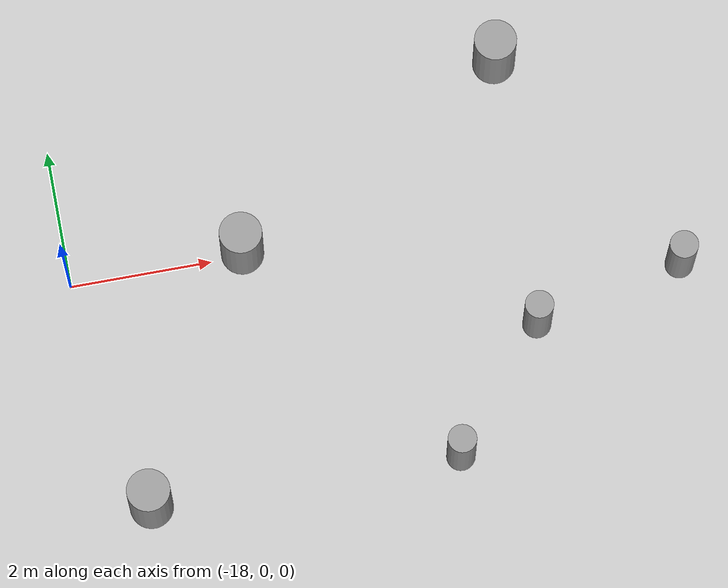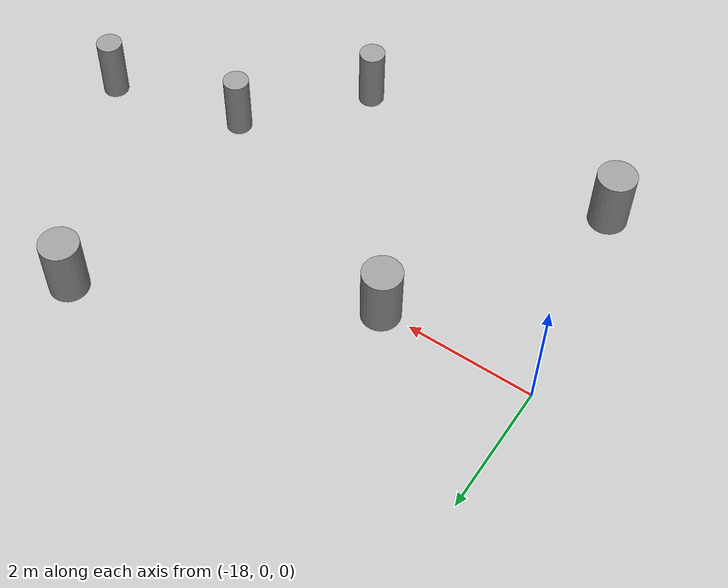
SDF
<sdf version="1.6">
 <world name="default">
  <model name="cylinder_right_clone_clone">
   <link name="link_0">
    <inertial>
     <mass>1</mass>
     <inertia><ixx>0.145833</ixx><ixy>0</ixy><ixz>0</ixz><iyy>0.145833</iyy><iyz>0</iyz><izz>0.125</izz></inertia>
    </inertial>
    <visual name="visual">
     <geometry><cylinder><radius>0.2</radius><length>1</length></cylinder></geometry>
     <material>
      <lighting>1</lighting>
      <script><uri>file://media/materials/scripts/gazebo.material</uri><name>Gazebo/Grey</name></script>
      <ambient>0.3 0.3 0.3 1</ambient>
      <diffuse>0.7 0.7 0.7 1</diffuse>
      <specular>0.01 0.01 0.01 1</specular>
      <emissive>0 0 0 1</emissive>
      <shader type="vertex"><normal_map>__default__</normal_map></shader>
     </material>
    </visual>
    <collision name="collision">
     <geometry><cylinder><radius>0.2</radius><length>1</length></cylinder></geometry>
     <surface>
      <friction>
       <ode><mu>1</mu><mu2>1</mu2><fdir1>0 0 0</fdir1><slip1>0</slip1><slip2>0</slip2></ode>
       <torsional>
        <coefficient>1</coefficient>
        <patch_radius>0</patch_radius>
        <surface_radius>0</surface_radius>
        <use_patch_radius>1</use_patch_radius>
        <ode><slip>0</slip></ode>
       </torsional>
      </friction>
      <bounce><restitution_coefficient>0</restitution_coefficient><threshold>1e+06</threshold></bounce>
      <contact>
       <collide_without_contact>0</collide_without_contact>
       <collide_without_contact_bitmask>1</collide_without_contact_bitmask>
       <collide_bitmask>1</collide_bitmask>
       <ode>
        <soft_cfm>0</soft_cfm>
        <soft_erp>0.2</soft_erp>
        <kp>1e+13</kp>
        <kd>1</kd>
        <max_vel>0.01</max_vel>
        <min_depth>0</min_depth>
       </ode>
       <bullet>
        <split_impulse>1</split_impulse>
        <split_impulse_penetration_threshold>-0.01</split_impulse_penetration_threshold>
        <soft_cfm>0</soft_cfm>
        <soft_erp>0.2</soft_erp>
        <kp>1e+13</kp>
        <kd>1</kd>
       </bullet>
      </contact>
     </surface>
    </collision>
   </link>
   <static>0</static>
   <pose>-9.57244 -1.24921 0.502866 0.010634 -0.010306 0.73698</pose>
  </model>
  <model name="cylinder_left_clone_2_clone_15_clone_7">
   <link name="link_1">
    <inertial>
     <mass>1</mass>
     <inertia><ixx>0.145833</ixx><ixy>0</ixy><ixz>0</ixz><iyy>0.145833</iyy><iyz>0</iyz><izz>0.125</izz></inertia>
    </inertial>
    <visual name="visual">
     <geometry><cylinder><radius>0.3</radius><length>1</length></cylinder></geometry>
     <material>
      <lighting>1</lighting>
      <script><uri>file://media/materials/scripts/gazebo.material</uri><name>Gazebo/Grey</name></script>
      <ambient>0.3 0.3 0.3 1</ambient>
      <diffuse>0.7 0.7 0.7 1</diffuse>
      <specular>0.01 0.01 0.01 1</specular>
      <emissive>0 0 0 1</emissive>
      <shader type="vertex"><normal_map>__default__</normal_map></shader>
     </material>
    </visual>
    <collision name="collision">
     <geometry><cylinder><radius>0.3</radius><length>1</length></cylinder></geometry>
     <surface>
      <friction>
       <ode><mu>1</mu><mu2>1</mu2><fdir1>0 0 0</fdir1><slip1>0</slip1><slip2>0</slip2></ode>
       <torsional>
        <coefficient>1</coefficient>
        <patch_radius>0</patch_radius>
        <surface_radius>0</surface_radius>
        <use_patch_radius>1</use_patch_radius>
        <ode><slip>0</slip></ode>
       </torsional>
      </friction>
      <bounce><restitution_coefficient>0</restitution_coefficient><threshold>1e+06</threshold></bounce>
      <contact>
       <collide_without_contact>0</collide_without_contact>
       <collide_without_contact_bitmask>1</collide_without_contact_bitmask>
       <collide_bitmask>1</collide_bitmask>
       <ode>
        <soft_cfm>0</soft_cfm>
        <soft_erp>0.2</soft_erp>
        <kp>1e+13</kp>
        <kd>1</kd>
        <max_vel>0.01</max_vel>
        <min_depth>0</min_depth>
       </ode>
       <bullet>
        <split_impulse>1</split_impulse>
        <split_impulse_penetration_threshold>-0.01</split_impulse_penetration_threshold>
        <soft_cfm>0</soft_cfm>
        <soft_erp>0.2</soft_erp>
        <kp>1e+13</kp>
        <kd>1</kd>
       </bullet>
      </contact>
     </surface>
    </collision>
   </link>
   <static>0</static>
   <pose>-17.415 -3.32541 0.49912 0 -0 1.95059</pose>
  </model>
  <model name="cylinder_left_clone_2_clone_15_clone_8">
   <link name="link_1">
    <inertial>
     <mass>1</mass>
     <inertia><ixx>0.145833</ixx><ixy>0</ixy><ixz>0</ixz><iyy>0.145833</iyy><iyz>0</iyz><izz>0.125</izz></inertia>
    </inertial>
    <visual name="visual">
     <geometry><cylinder><radius>0.3</radius><length>1</length></cylinder></geometry>
     <material>
      <lighting>1</lighting>
      <script><uri>file://media/materials/scripts/gazebo.material</uri><name>Gazebo/Grey</name></script>
      <ambient>0.3 0.3 0.3 1</ambient>
      <diffuse>0.7 0.7 0.7 1</diffuse>
      <specular>0.01 0.01 0.01 1</specular>
      <emissive>0 0 0 1</emissive>
      <shader type="vertex"><normal_map>__default__</normal_map></shader>
     </material>
    </visual>
    <collision name="collision">
     <geometry><cylinder><radius>0.3</radius><length>1</length></cylinder></geometry>
     <surface>
      <friction>
       <ode><mu>1</mu><mu2>1</mu2><fdir1>0 0 0</fdir1><slip1>0</slip1><slip2>0</slip2></ode>
       <torsional>
        <coefficient>1</coefficient>
        <patch_radius>0</patch_radius>
        <surface_radius>0</surface_radius>
        <use_patch_radius>1</use_patch_radius>
        <ode><slip>0</slip></ode>
       </torsional>
      </friction>
      <bounce><restitution_coefficient>0</restitution_coefficient><threshold>1e+06</threshold></bounce>
      <contact>
       <collide_without_contact>0</collide_without_contact>
       <collide_without_contact_bitmask>1</collide_without_contact_bitmask>
       <collide_bitmask>1</collide_bitmask>
       <ode>
        <soft_cfm>0</soft_cfm>
        <soft_erp>0.2</soft_erp>
        <kp>1e+13</kp>
        <kd>1</kd>
        <max_vel>0.01</max_vel>
        <min_depth>0</min_depth>
       </ode>
       <bullet>
        <split_impulse>1</split_impulse>
        <split_impulse_penetration_threshold>-0.01</split_impulse_penetration_threshold>
        <soft_cfm>0</soft_cfm>
        <soft_erp>0.2</soft_erp>
        <kp>1e+13</kp>
        <kd>1</kd>
       </bullet>
      </contact>
     </surface>
    </collision>
   </link>
   <static>0</static>
   <pose>-15.5506 0.036725 0.49912 0 -0 1.95059</pose>
  </model>
  <model name="cylinder_left_clone_2_clone_15_clone_9">
   <link name="link_1">
    <inertial>
     <mass>1</mass>
     <inertia><ixx>0.145833</ixx><ixy>0</ixy><ixz>0</ixz><iyy>0.145833</iyy><iyz>0</iyz><izz>0.125</izz></inertia>
    </inertial>
    <visual name="visual">
     <geometry><cylinder><radius>0.3</radius><length>1</length></cylinder></geometry>
     <material>
      <lighting>1</lighting>
      <script><uri>file://media/materials/scripts/gazebo.material</uri><name>Gazebo/Grey</name></script>
      <ambient>0.3 0.3 0.3 1</ambient>
      <diffuse>0.7 0.7 0.7 1</diffuse>
      <specular>0.01 0.01 0.01 1</specular>
      <emissive>0 0 0 1</emissive>
      <shader type="vertex"><normal_map>__default__</normal_map></shader>
     </material>
    </visual>
    <collision name="collision">
     <geometry><cylinder><radius>0.3</radius><length>1</length></cylinder></geometry>
     <surface>
      <friction>
       <ode><mu>1</mu><mu2>1</mu2><fdir1>0 0 0</fdir1><slip1>0</slip1><slip2>0</slip2></ode>
       <torsional>
        <coefficient>1</coefficient>
        <patch_radius>0</patch_radius>
        <surface_radius>0</surface_radius>
        <use_patch_radius>1</use_patch_radius>
        <ode><slip>0</slip></ode>
       </torsional>
      </friction>
      <bounce><restitution_coefficient>0</restitution_coefficient><threshold>1e+06</threshold></bounce>
      <contact>
       <collide_without_contact>0</collide_without_contact>
       <collide_without_contact_bitmask>1</collide_without_contact_bitmask>
       <collide_bitmask>1</collide_bitmask>
       <ode>
        <soft_cfm>0</soft_cfm>
        <soft_erp>0.2</soft_erp>
        <kp>1e+13</kp>
        <kd>1</kd>
        <max_vel>0.01</max_vel>
        <min_depth>0</min_depth>
       </ode>
       <bullet>
        <split_impulse>1</split_impulse>
        <split_impulse_penetration_threshold>-0.01</split_impulse_penetration_threshold>
        <soft_cfm>0</soft_cfm>
        <soft_erp>0.2</soft_erp>
        <kp>1e+13</kp>
        <kd>1</kd>
       </bullet>
      </contact>
     </surface>
    </collision>
   </link>
   <static>0</static>
   <pose>-11.549 2.16266 0.49912 0 -0 1.95059</pose>
  </model>
  <model name="cylinder_right_clone_clone_clone">
   <link name="link_0">
    <inertial>
     <mass>1</mass>
     <inertia><ixx>0.145833</ixx><ixy>0</ixy><ixz>0</ixz><iyy>0.145833</iyy><iyz>0</iyz><izz>0.125</izz></inertia>
    </inertial>
    <visual name="visual">
     <geometry><cylinder><radius>0.2</radius><length>1</length></cylinder></geometry>
     <material>
      <lighting>1</lighting>
      <script><uri>file://media/materials/scripts/gazebo.material</uri><name>Gazebo/Grey</name></script>
      <ambient>0.3 0.3 0.3 1</ambient>
      <diffuse>0.7 0.7 0.7 1</diffuse>
      <specular>0.01 0.01 0.01 1</specular>
      <emissive>0 0 0 1</emissive>
      <shader type="vertex"><normal_map>__default__</normal_map></shader>
     </material>
    </visual>
    <collision name="collision">
     <geometry><cylinder><radius>0.2</radius><length>1</length></cylinder></geometry>
     <surface>
      <friction>
       <ode><mu>1</mu><mu2>1</mu2><fdir1>0 0 0</fdir1><slip1>0</slip1><slip2>0</slip2></ode>
       <torsional>
        <coefficient>1</coefficient>
        <patch_radius>0</patch_radius>
        <surface_radius>0</surface_radius>
        <use_patch_radius>1</use_patch_radius>
        <ode><slip>0</slip></ode>
       </torsional>
      </friction>
      <bounce><restitution_coefficient>0</restitution_coefficient><threshold>1e+06</threshold></bounce>
      <contact>
       <collide_without_contact>0</collide_without_contact>
       <collide_without_contact_bitmask>1</collide_without_contact_bitmask>
       <collide_bitmask>1</collide_bitmask>
       <ode>
        <soft_cfm>0</soft_cfm>
        <soft_erp>0.2</soft_erp>
        <kp>1e+13</kp>
        <kd>1</kd>
        <max_vel>0.01</max_vel>
        <min_depth>0</min_depth>
       </ode>
       <bullet>
        <split_impulse>1</split_impulse>
        <split_impulse_penetration_threshold>-0.01</split_impulse_penetration_threshold>
        <soft_cfm>0</soft_cfm>
        <soft_erp>0.2</soft_erp>
        <kp>1e+13</kp>
        <kd>1</kd>
       </bullet>
      </contact>
     </surface>
    </collision>
   </link>
   <static>0</static>
   <pose>-11.7009 -1.7314 0.49912 0 0 -0.982841</pose>
  </model>
  <model name="cylinder_right_clone_clone_clone_0">
   <link name="link_0">
    <inertial>
     <mass>1</mass>
     <inertia><ixx>0.145833</ixx><ixy>0</ixy><ixz>0</ixz><iyy>0.145833</iyy><iyz>0</iyz><izz>0.125</izz></inertia>
    </inertial>
    <visual name="visual">
     <geometry><cylinder><radius>0.2</radius><length>1</length></cylinder></geometry>
     <material>
      <lighting>1</lighting>
      <script><uri>file://media/materials/scripts/gazebo.material</uri><name>Gazebo/Grey</name></script>
      <ambient>0.3 0.3 0.3 1</ambient>
      <diffuse>0.7 0.7 0.7 1</diffuse>
      <specular>0.01 0.01 0.01 1</specular>
      <emissive>0 0 0 1</emissive>
      <shader type="vertex"><normal_map>__default__</normal_map></shader>
     </material>
    </visual>
    <collision name="collision">
     <geometry><cylinder><radius>0.2</radius><length>1</length></cylinder></geometry>
     <surface>
      <friction>
       <ode><mu>1</mu><mu2>1</mu2><fdir1>0 0 0</fdir1><slip1>0</slip1><slip2>0</slip2></ode>
       <torsional>
        <coefficient>1</coefficient>
        <patch_radius>0</patch_radius>
        <surface_radius>0</surface_radius>
        <use_patch_radius>1</use_patch_radius>
        <ode><slip>0</slip></ode>
       </torsional>
      </friction>
      <bounce><restitution_coefficient>0</restitution_coefficient><threshold>1e+06</threshold></bounce>
      <contact>
       <collide_without_contact>0</collide_without_contact>
       <collide_without_contact_bitmask>1</collide_without_contact_bitmask>
       <collide_bitmask>1</collide_bitmask>
       <ode>
        <soft_cfm>0</soft_cfm>
        <soft_erp>0.2</soft_erp>
        <kp>1e+13</kp>
        <kd>1</kd>
        <max_vel>0.01</max_vel>
        <min_depth>0</min_depth>
       </ode>
       <bullet>
        <split_impulse>1</split_impulse>
        <split_impulse_penetration_threshold>-0.01</split_impulse_penetration_threshold>
        <soft_cfm>0</soft_cfm>
        <soft_erp>0.2</soft_erp>
        <kp>1e+13</kp>
        <kd>1</kd>
       </bullet>
      </contact>
     </surface>
    </collision>
   </link>
   <static>0</static>
   <pose>-13.1028 -3.40155 0.49912 0 0 -0.982844</pose>
  </model>
 </world>
</sdf>
